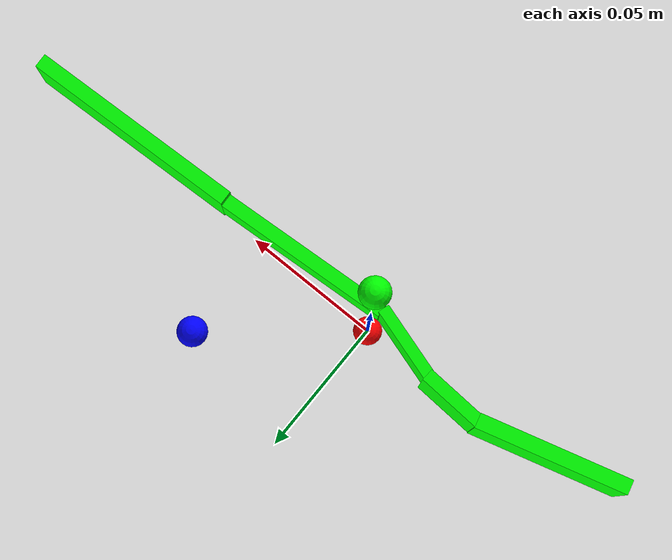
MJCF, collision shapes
<mujoco model="Fork_1">
  <compiler angle="radian"/>

  <default>
    <default class="/"/>
  </default>

  <asset>
    <texture type="2d" colorspace="linear" name="BrushedAluminum_AlbedoTransparency" file="assets/BrushedAluminum_AlbedoTransparency.png"/>
    <material name="material_BrushedAluminum_AlbedoTransparency" class="/" texture="BrushedAluminum_AlbedoTransparency"/>
    <mesh name="Fork_1_Fork.002" class="/" content_type="model/obj" file="assets/Fork_1_Fork.002.obj" scale="2495.35 2168.2 2168.29"/>
  </asset>

  <worldbody>
    <body>
      <body name="object" euler="1.5707963267948966 0 0">
        <geom name="Fork_1_Fork.002"  type="mesh" contype="0" conaffinity="0" condim="3" group="1" priority="0" friction="1 0.005 0.0001" solmix="1" solref="0.02 1" solimp="0.9 0.95 0.001 0.5 2" fluidcoef="0.5 0.25 1.5 1 1" mass="1e-08" material="material_BrushedAluminum_AlbedoTransparency" rgba="0.5 0.5 0.5 1" mesh="Fork_1_Fork.002"/>
        <geom name="Fork_1_Fork.002_PrimitiveCollider_0"  size="0.0401895 0.00262198 0.0111485" pos="0.105755 -5.4024e-09 0.00206381" quat="-0.706959 0.706959 -0.0144491 -0.0144491" type="box" contype="1" conaffinity="15" condim="3" group="0" priority="0" friction="0.9 0.9 0.001" solmix="1" solref="0.025 1" solimp="0.998 0.998 0.001 0.5 2" fluidcoef="0.5 0.25 1.5 1 1" shellinertia="false" density="1662.83" rgba="0 1 0 1"/>
        <geom name="Fork_1_Fork.002_PrimitiveCollider_1"  size="0.0275217 0.00268261 0.0167068" pos="-0.0745591 1.22785e-09 0.00558109" quat="-0.700744 0.700744 -0.0946478 -0.0946479" type="box" contype="1" conaffinity="15" condim="3" group="0" priority="0" friction="0.9 0.9 0.001" solmix="1" solref="0.025 1" solimp="0.998 0.998 0.001 0.5 2" fluidcoef="0.5 0.25 1.5 1 1" shellinertia="false" density="1662.83" rgba="0 1 0 1"/>
        <geom name="Fork_1_Fork.002_PrimitiveCollider_2"  size="0.0120454 0.00230066 0.0166692" pos="-0.0375114 -5.17042e-10 -0.00108703" quat="-0.706818 0.706818 0.0201997 0.0201996" type="box" contype="1" conaffinity="15" condim="3" group="0" priority="0" friction="0.9 0.9 0.001" solmix="1" solref="0.025 1" solimp="0.998 0.998 0.001 0.5 2" fluidcoef="0.5 0.25 1.5 1 1" shellinertia="false" density="1662.83" rgba="0 1 0 1"/>
        <geom name="Fork_1_Fork.002_PrimitiveCollider_3"  size="0.0138156 0.00212792 0.00964276" pos="-0.0130808 -5.3802e-10 0.00443132" quat="-0.699426 0.699425 0.103943 0.103943" type="box" contype="1" conaffinity="15" condim="3" group="0" priority="0" friction="0.9 0.9 0.001" solmix="1" solref="0.025 1" solimp="0.998 0.998 0.001 0.5 2" fluidcoef="0.5 0.25 1.5 1 1" shellinertia="false" density="1662.83" rgba="0 1 0 1"/>
        <geom name="Fork_1_Fork.002_PrimitiveCollider_4"  size="0.0329055 0.00248474 0.00739942" pos="0.0329126 6.56665e-11 0.00570624" quat="-0.706736 0.706736 -0.0229036 -0.0229037" type="box" contype="1" conaffinity="15" condim="3" group="0" priority="0" friction="0.9 0.9 0.001" solmix="1" solref="0.025 1" solimp="0.998 0.998 0.001 0.5 2" fluidcoef="0.5 0.25 1.5 1 1" shellinertia="false" density="1662.83" rgba="0 1 0 1"/>
      </body>
      <site rgba="1 0 0 1" size="0.005" pos="0 0 0" name="bottom_site" />
      <site rgba="0 1 0 1" size="0.005" pos="0 0 0.10" name="top_site" />
      <site rgba="0 0 1 1" size="0.005" pos="0.04 0.04 0.05" name="horizontal_radius_site" />
    </body>
  </worldbody>
</mujoco>
